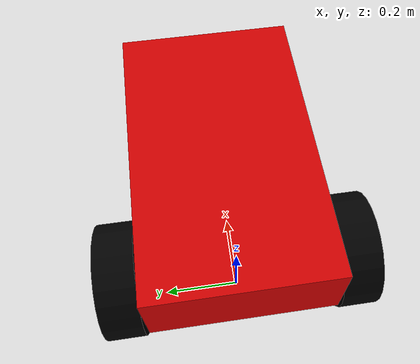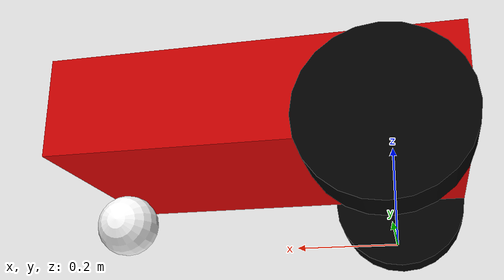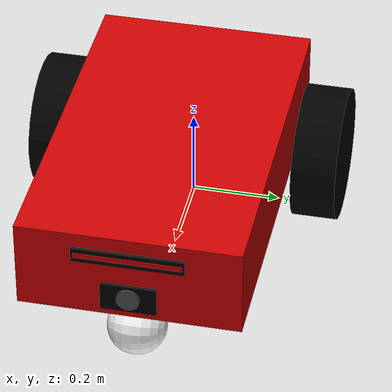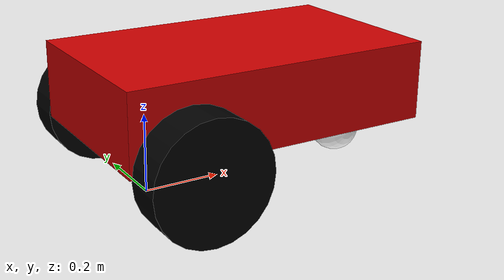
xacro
<?xml version="1.0"?>

<robot name="robot" xmlns:xacro="http://www.ros.org/wiki/xacro">

  <xacro:arg name="namespace" default="robot_0" />
  <xacro:arg name="colour_base" default="red"/>

  <xacro:property name="base_length" value="0.8" />
  <xacro:property name="base_height" value="0.2" />

  <xacro:include filename="colours.xacro"/>
  <xacro:include filename="chasis.xacro"/>

  <xacro:include filename="GazeboPlugins.xacro"/>
  <xacro:include filename="lidar.xacro"/>
  <xacro:include filename="camera.xacro"/>
</robot>

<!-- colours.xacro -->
<robot xmlns:xacro="http://www.ros.org/wiki/xacro">
  <material name="red">
    <color rgba="0.8 0 0 1"/>
  </material>

  <material name="black">
    <color rgba="0 0 0 1"/>
  </material>

  <material name="sensor_grey">
    <color rgba="0.3 0.3 0.3 1"/>
  </material>

  <material name="white">
    <color rgba="1 1 1 1"/>
  </material>

  <material name="blue">
    <color rgba="0 0 0.8 1"/>
  </material>

  <material name="green">
    <color rgba="0 0.8 0 1"/>
  </material>

  <material name="dark_red">
    <color rgba="0.5 0 0 1"/>
  </material>
</robot>

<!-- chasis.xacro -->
<robot xmlns:xacro="http://www.ros.org/wiki/xacro">

  <xacro:property name="wheel_radius" value="0.15" />
  <xacro:property name="wheel_length" value="0.1" />

  <!-- Inercias -->
  <xacro:macro name="base_inertia" params="mass x y z o_xyz o_rpy" >
     <inertial>
         <mass value="${mass}" />
          <origin xyz="${o_xyz}" rpy="${o_rpy}" />
          <inertia ixx="${mass / 12.0*(y*y + z*z)}" ixy="0.0" ixz="0.0"
                            iyy="${mass / 12.0*(x*x + z*z)}" iyz="0.0"
                            izz="${mass / 12.0*(x*x + y*y)}" />
      </inertial>
  </xacro:macro>

  <xacro:macro name="inertial_sphere" params="mass radius">
    <inertial>
      <mass value="${mass}" />
      <inertia ixx="${(2/5) * mass * (radius*radius)}" ixy="0.0" ixz="0.0"
               iyy="${(2/5) * mass * (radius*radius)}" iyz="0.0"
               izz="${(2/5) * mass * (radius*radius)}" />
    </inertial>
  </xacro:macro>

  <xacro:macro name="inertial_cylinder" params="mass length radius">
    <inertial>
      <mass value="${mass}" />
      <inertia ixx="${(1/12) * mass * (3*radius*radius + length*length)}" ixy="0.0" ixz="0.0"
               iyy="${(1/12) * mass * (3*radius*radius + length*length)}" iyz="0.0"
               izz="${(1/2) * mass * (radius*radius)}" />
    </inertial>
  </xacro:macro>

  <!-- Macros para los links -->
  <xacro:macro name="base_link_macro" params="largo ancho alto mass offset_x">
      <link name="$(arg namespace)/base_link">
          <visual>
              <origin xyz="${offset_x} 0 0" rpy="0 0 0"/>
              <geometry>
                  <box size="${largo} ${ancho} ${alto}" />
              </geometry>
              <material name="$(arg colour_base)"/>
           </visual>
           <xacro:base_inertia mass="${mass}" x="${largo}" y="${ancho}"
            z="${alto}" o_xyz="0 0 0" o_rpy="0 0 0" />
        <collision>
            <geometry><box size="${largo} ${ancho} ${alto}" /></geometry>
        </collision>
      </link>
  </xacro:macro>

  <xacro:macro name="wheel_macro" params="name radius length mass">
      <link name="$(arg namespace)/${name}_wheel">
      <visual>
        <geometry>
          <cylinder radius="${radius}" length="${length}"/>
        </geometry>
        <material name="black"/>
        <origin xyz="0 0 0" rpy="0 0 0"/>
      </visual>
      <xacro:inertial_cylinder mass="${mass}" length="${length}" radius="${radius}" />
      <collision>
        <geometry>
          <sphere radius="${radius}"/>
        </geometry>
      </collision>
    </link>
  </xacro:macro>

  <xacro:macro name="free_wheel_macro" params="radius mass">
      <link name="$(arg namespace)/free_wheel">
      <visual>
        <geometry>
          <sphere radius="${radius}"/>
        </geometry>
        <material name="white"/>
        <origin xyz="0 0 0" rpy="0 0 0"/>
      </visual>
      <xacro:inertial_sphere mass="${mass}" radius="${radius}"/>
      <collision>
        <geometry>
          <sphere radius="${radius}"/>
        </geometry>
      </collision>
    </link>
  </xacro:macro>

  <!-- Creación de los links -->
  <xacro:base_link_macro mass="5.0" largo="${base_length}" ancho="${base_length*0.6}" alto="${base_height}" offset_x="${base_length/2 - wheel_radius}"/>
  <xacro:free_wheel_macro mass="2.0" radius="${wheel_radius/2-0.01}"/>
  <xacro:wheel_macro mass="2.0" name="right" radius="${wheel_radius}" length="${wheel_length}"/>
  <xacro:wheel_macro mass="2.0" name="left" radius="${wheel_radius}" length="${wheel_length}"/>

  <link name="$(arg namespace)/base_footprint_link"/>

  <link name="$(arg namespace)/base_camera">
    <visual>
      <geometry>
          <box size="0.01 ${base_length*0.15} ${base_height/3}" />
      </geometry>
      <material name="black"/>
   </visual>
   <visual>
      <geometry>
          <cylinder radius="${base_height/8}" length="${0.02}"/>
      </geometry>
      <material name="sensor_grey"/>
      <origin xyz="0 0 0" rpy="0 1.57075 0"/>
    </visual>
  </link>

  <link name="$(arg namespace)/base_lidar">
  <visual>
    <origin rpy="0 0 0" xyz="0 0 0"/>
      <geometry>
          <box size="0.01 ${base_length*0.3} ${base_height/6}" />
      </geometry>
      <material name="black"/>
   </visual>
   <visual>
      <geometry>
          <box size="0.01 ${base_length*0.3-0.01} ${base_height/12}" />
      </geometry>
      <material name="$(arg colour_base)"/>
      <origin xyz="0 0 0" rpy="0 1.57075 0"/>
    </visual>
  </link>

  <!-- Creación de los joints -->
  <joint name="$(arg namespace)/base_to_right_wheel" type="continuous">
    <parent link="$(arg namespace)/base_link"/>
    <child link="$(arg namespace)/right_wheel"/>
    <axis xyz="0 0 1"/>
    <origin rpy="-1.57075 0 0" xyz="0 ${-base_length*0.3-wheel_length/2-0.01} ${-base_height/2}"/>
  </joint>

  <joint name="$(arg namespace)/base_to_left_wheel" type="continuous">
    <parent link="$(arg namespace)/base_link"/>
    <child link="$(arg namespace)/left_wheel"/>
    <axis xyz="0 0 1"/>
    <origin rpy="-1.57075 0 0" xyz="0 ${base_length*0.3+wheel_length/2+0.01} ${-base_height/2}"/>
  </joint>

  <joint name="$(arg namespace)/base_to_free_wheel" type="fixed">
    <parent link="$(arg namespace)/base_link"/>
    <child link="$(arg namespace)/free_wheel"/>
    <origin rpy="-1.57075 0 0" xyz="${base_length-1.5*wheel_radius} 0 ${-base_height/2-wheel_radius/2-0.01}"/>
  </joint>

  <joint name="$(arg namespace)/base_to_base_footprint" type="fixed">
    <parent link="$(arg namespace)/base_footprint_link"/>
    <child link="$(arg namespace)/base_link"/>
    <origin rpy="0 0 0" xyz="0 0 ${base_height/2+wheel_radius}"/>
  </joint>

  <joint name="$(arg namespace)/base_to_camera" type="fixed">
    <parent link="$(arg namespace)/base_link"/>
    <child link="$(arg namespace)/base_camera"/>
    <origin rpy="0 0 0" xyz="${base_length - wheel_radius} 0 -0.05"/>
  </joint>

  <joint name="$(arg namespace)/base_to_lidar" type="fixed">
    <parent link="$(arg namespace)/base_link"/>
    <child link="$(arg namespace)/base_lidar"/>
    <origin rpy="0 0 0" xyz="${base_length - wheel_radius} 0 0.05"/>
  </joint>

</robot>
